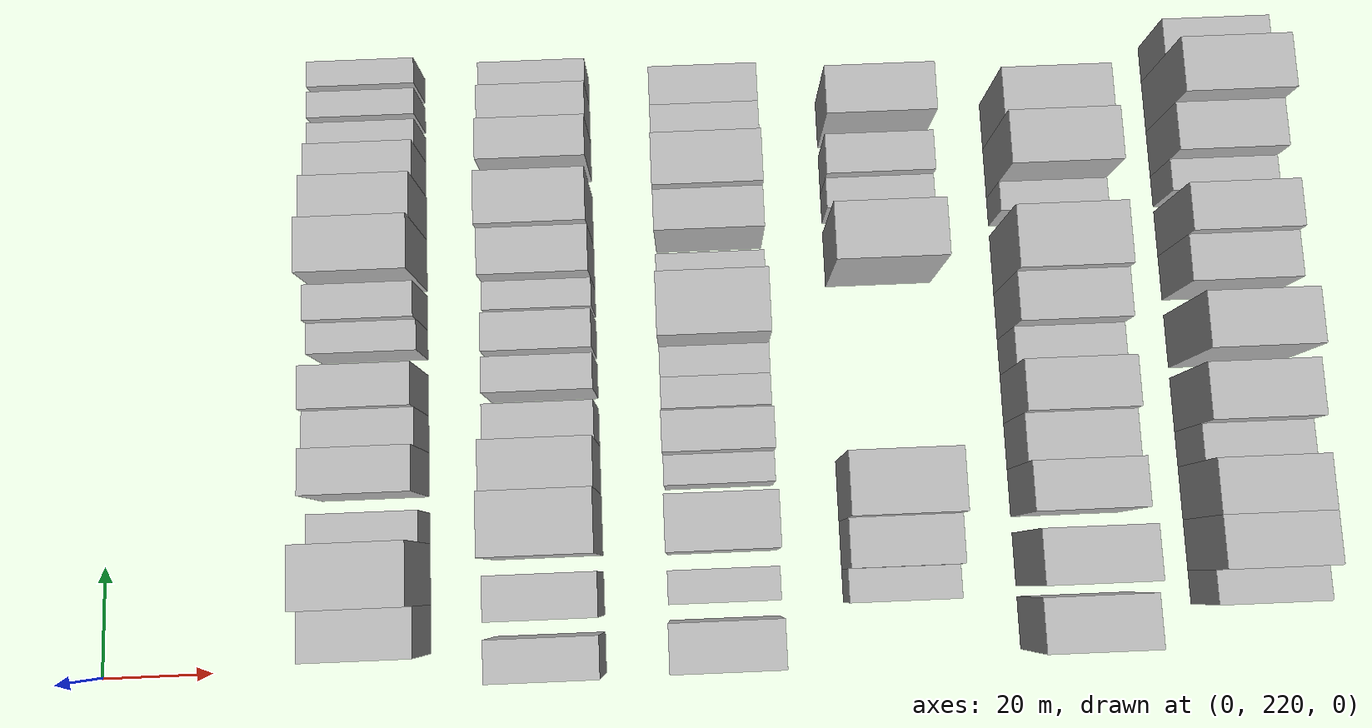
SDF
<sdf version="1.6">
 <world name="default">
  <model name="building_78">
   <static>1</static>
   <pose>50.0000 226.3653 0 0.000000 0.000000 0.000000</pose>
   <link name="link">
    <pose>0 0 9.00 0 0 0</pose>
    <collision name="collision"><geometry><box><size>20.0000 8.8633 18.0000</size></box></geometry></collision>
    <visual name="visual">
     <cast_shadows>0</cast_shadows>
     <geometry><box><size>20.0000 8.8633 18.0000</size></box></geometry>
     <material>
      <script>
       <uri>model://HANNAS_wall/materials/scripts</uri>
       <uri>model://HANNAS_wall/materials/textures</uri>
       <name>vrc/HANNAS_wall</name>
      </script>
     </material>
    </visual>
   </link>
  </model>
  <model name="building_79">
   <static>1</static>
   <pose>50.0000 236.3810 0 0.000000 0.000000 0.000000</pose>
   <link name="link">
    <pose>0 0 12.00 0 0 0</pose>
    <collision name="collision"><geometry><box><size>20.0000 11.1682 24.0000</size></box></geometry></collision>
    <visual name="visual">
     <cast_shadows>0</cast_shadows>
     <geometry><box><size>20.0000 11.1682 24.0000</size></box></geometry>
     <material>
      <script>
       <uri>model://HANNAS_wall/materials/scripts</uri>
       <uri>model://HANNAS_wall/materials/textures</uri>
       <name>vrc/HANNAS_wall</name>
      </script>
     </material>
    </visual>
   </link>
  </model>
  <model name="building_80">
   <static>1</static>
   <pose>50.0000 244.7860 0 0.000000 0.000000 0.000000</pose>
   <link name="link">
    <pose>0 0 6.00 0 0 0</pose>
    <collision name="collision"><geometry><box><size>20.0000 5.6417 12.0000</size></box></geometry></collision>
    <visual name="visual">
     <cast_shadows>0</cast_shadows>
     <geometry><box><size>20.0000 5.6417 12.0000</size></box></geometry>
     <material>
      <script>
       <uri>model://HANNAS_wall/materials/scripts</uri>
       <uri>model://HANNAS_wall/materials/textures</uri>
       <name>vrc/HANNAS_wall</name>
      </script>
     </material>
    </visual>
   </link>
  </model>
  <model name="building_81">
   <static>1</static>
   <pose>50.0000 254.7233 0 0.000000 0.000000 0.000000</pose>
   <link name="link">
    <pose>0 0 9.00 0 0 0</pose>
    <collision name="collision"><geometry><box><size>20.0000 8.2331 18.0000</size></box></geometry></collision>
    <visual name="visual">
     <cast_shadows>0</cast_shadows>
     <geometry><box><size>20.0000 8.2331 18.0000</size></box></geometry>
     <material>
      <script>
       <uri>model://HANNAS_wall/materials/scripts</uri>
       <uri>model://HANNAS_wall/materials/textures</uri>
       <name>vrc/HANNAS_wall</name>
      </script>
     </material>
    </visual>
   </link>
  </model>
  <model name="building_82">
   <static>1</static>
   <pose>50.0000 262.3057 0 0.000000 0.000000 0.000000</pose>
   <link name="link">
    <pose>0 0 7.50 0 0 0</pose>
    <collision name="collision"><geometry><box><size>20.0000 6.9316 15.0000</size></box></geometry></collision>
    <visual name="visual">
     <cast_shadows>0</cast_shadows>
     <geometry><box><size>20.0000 6.9316 15.0000</size></box></geometry>
     <material>
      <script>
       <uri>model://HANNAS_wall/materials/scripts</uri>
       <uri>model://HANNAS_wall/materials/textures</uri>
       <name>vrc/HANNAS_wall</name>
      </script>
     </material>
    </visual>
   </link>
  </model>
  <model name="building_83">
   <static>1</static>
   <pose>50.0000 269.6530 0 0.000000 0.000000 0.000000</pose>
   <link name="link">
    <pose>0 0 9.00 0 0 0</pose>
    <collision name="collision"><geometry><box><size>20.0000 7.7631 18.0000</size></box></geometry></collision>
    <visual name="visual">
     <cast_shadows>0</cast_shadows>
     <geometry><box><size>20.0000 7.7631 18.0000</size></box></geometry>
     <material>
      <script>
       <uri>model://HANNAS_wall/materials/scripts</uri>
       <uri>model://HANNAS_wall/materials/textures</uri>
       <name>vrc/HANNAS_wall</name>
      </script>
     </material>
    </visual>
   </link>
  </model>
  <model name="building_84">
   <static>1</static>
   <pose>50.0000 279.3646 0 0.000000 0.000000 0.000000</pose>
   <link name="link">
    <pose>0 0 6.00 0 0 0</pose>
    <collision name="collision"><geometry><box><size>20.0000 5.6602 12.0000</size></box></geometry></collision>
    <visual name="visual">
     <cast_shadows>0</cast_shadows>
     <geometry><box><size>20.0000 5.6602 12.0000</size></box></geometry>
     <material>
      <script>
       <uri>model://HANNAS_wall/materials/scripts</uri>
       <uri>model://HANNAS_wall/materials/textures</uri>
       <name>vrc/HANNAS_wall</name>
      </script>
     </material>
    </visual>
   </link>
  </model>
  <model name="building_85">
   <static>1</static>
   <pose>50.0000 285.4695 0 0.000000 0.000000 0.000000</pose>
   <link name="link">
    <pose>0 0 7.50 0 0 0</pose>
    <collision name="collision"><geometry><box><size>20.0000 6.5495 15.0000</size></box></geometry></collision>
    <visual name="visual">
     <cast_shadows>0</cast_shadows>
     <geometry><box><size>20.0000 6.5495 15.0000</size></box></geometry>
     <material>
      <script>
       <uri>model://HANNAS_wall/materials/scripts</uri>
       <uri>model://HANNAS_wall/materials/textures</uri>
       <name>vrc/HANNAS_wall</name>
      </script>
     </material>
    </visual>
   </link>
  </model>
  <model name="building_86">
   <static>1</static>
   <pose>50.0000 294.7625 0 0.000000 0.000000 0.000000</pose>
   <link name="link">
    <pose>0 0 10.50 0 0 0</pose>
    <collision name="collision"><geometry><box><size>20.0000 10.0365 21.0000</size></box></geometry></collision>
    <visual name="visual">
     <cast_shadows>0</cast_shadows>
     <geometry><box><size>20.0000 10.0365 21.0000</size></box></geometry>
     <material>
      <script>
       <uri>model://HANNAS_wall/materials/scripts</uri>
       <uri>model://HANNAS_wall/materials/textures</uri>
       <name>vrc/HANNAS_wall</name>
      </script>
     </material>
    </visual>
   </link>
  </model>
  <model name="building_87">
   <static>1</static>
   <pose>50.0000 304.0369 0 0.000000 0.000000 0.000000</pose>
   <link name="link">
    <pose>0 0 9.00 0 0 0</pose>
    <collision name="collision"><geometry><box><size>20.0000 8.5123 18.0000</size></box></geometry></collision>
    <visual name="visual">
     <cast_shadows>0</cast_shadows>
     <geometry><box><size>20.0000 8.5123 18.0000</size></box></geometry>
     <material>
      <script>
       <uri>model://HANNAS_wall/materials/scripts</uri>
       <uri>model://HANNAS_wall/materials/textures</uri>
       <name>vrc/HANNAS_wall</name>
      </script>
     </material>
    </visual>
   </link>
  </model>
  <model name="building_88">
   <static>1</static>
   <pose>50.0000 311.7357 0 0.000000 0.000000 0.000000</pose>
   <link name="link">
    <pose>0 0 7.50 0 0 0</pose>
    <collision name="collision"><geometry><box><size>20.0000 6.8854 15.0000</size></box></geometry></collision>
    <visual name="visual">
     <cast_shadows>0</cast_shadows>
     <geometry><box><size>20.0000 6.8854 15.0000</size></box></geometry>
     <material>
      <script>
       <uri>model://HANNAS_wall/materials/scripts</uri>
       <uri>model://HANNAS_wall/materials/textures</uri>
       <name>vrc/HANNAS_wall</name>
      </script>
     </material>
    </visual>
   </link>
  </model>
  <model name="building_89">
   <static>1</static>
   <pose>50.0000 317.6586 0 0.000000 0.000000 0.000000</pose>
   <link name="link">
    <pose>0 0 6.00 0 0 0</pose>
    <collision name="collision"><geometry><box><size>20.0000 4.9605 12.0000</size></box></geometry></collision>
    <visual name="visual">
     <cast_shadows>0</cast_shadows>
     <geometry><box><size>20.0000 4.9605 12.0000</size></box></geometry>
     <material>
      <script>
       <uri>model://HANNAS_wall/materials/scripts</uri>
       <uri>model://HANNAS_wall/materials/textures</uri>
       <name>vrc/HANNAS_wall</name>
      </script>
     </material>
    </visual>
   </link>
  </model>
  <model name="building_90">
   <static>1</static>
   <pose>50.0000 323.6501 0 0.000000 0.000000 0.000000</pose>
   <link name="link">
    <pose>0 0 6.00 0 0 0</pose>
    <collision name="collision"><geometry><box><size>20.0000 5.0225 12.0000</size></box></geometry></collision>
    <visual name="visual">
     <cast_shadows>0</cast_shadows>
     <geometry><box><size>20.0000 5.0225 12.0000</size></box></geometry>
     <material>
      <script>
       <uri>model://HANNAS_wall/materials/scripts</uri>
       <uri>model://HANNAS_wall/materials/textures</uri>
       <name>vrc/HANNAS_wall</name>
      </script>
     </material>
    </visual>
   </link>
  </model>
  <model name="building_91">
   <static>1</static>
   <pose>50.0000 329.6198 0 0.000000 0.000000 0.000000</pose>
   <link name="link">
    <pose>0 0 6.00 0 0 0</pose>
    <collision name="collision"><geometry><box><size>20.0000 4.9169 12.0000</size></box></geometry></collision>
    <visual name="visual">
     <cast_shadows>0</cast_shadows>
     <geometry><box><size>20.0000 4.9169 12.0000</size></box></geometry>
     <material>
      <script>
       <uri>model://HANNAS_wall/materials/scripts</uri>
       <uri>model://HANNAS_wall/materials/textures</uri>
       <name>vrc/HANNAS_wall</name>
      </script>
     </material>
    </visual>
   </link>
  </model>
  <model name="building_198">
   <static>1</static>
   <pose>82.0000 220.8516 0 0.000000 0.000000 0.000000</pose>
   <link name="link">
    <pose>0 0 9.00 0 0 0</pose>
    <collision name="collision"><geometry><box><size>20.0000 7.4585 18.0000</size></box></geometry></collision>
    <visual name="visual">
     <cast_shadows>0</cast_shadows>
     <geometry><box><size>20.0000 7.4585 18.0000</size></box></geometry>
     <material>
      <script>
       <uri>model://HANNAS_wall/materials/scripts</uri>
       <uri>model://HANNAS_wall/materials/textures</uri>
       <name>vrc/HANNAS_wall</name>
      </script>
     </material>
    </visual>
   </link>
  </model>
  <model name="building_199">
   <static>1</static>
   <pose>82.0000 231.5160 0 0.000000 0.000000 0.000000</pose>
   <link name="link">
    <pose>0 0 9.00 0 0 0</pose>
    <collision name="collision"><geometry><box><size>20.0000 7.8703 18.0000</size></box></geometry></collision>
    <visual name="visual">
     <cast_shadows>0</cast_shadows>
     <geometry><box><size>20.0000 7.8703 18.0000</size></box></geometry>
     <material>
      <script>
       <uri>model://HANNAS_wall/materials/scripts</uri>
       <uri>model://HANNAS_wall/materials/textures</uri>
       <name>vrc/HANNAS_wall</name>
      </script>
     </material>
    </visual>
   </link>
  </model>
  <model name="building_200">
   <static>1</static>
   <pose>82.0000 244.0868 0 0.000000 0.000000 0.000000</pose>
   <link name="link">
    <pose>0 0 12.00 0 0 0</pose>
    <collision name="collision"><geometry><box><size>20.0000 11.2714 24.0000</size></box></geometry></collision>
    <visual name="visual">
     <cast_shadows>0</cast_shadows>
     <geometry><box><size>20.0000 11.2714 24.0000</size></box></geometry>
     <material>
      <script>
       <uri>model://HANNAS_wall/materials/scripts</uri>
       <uri>model://HANNAS_wall/materials/textures</uri>
       <name>vrc/HANNAS_wall</name>
      </script>
     </material>
    </visual>
   </link>
  </model>
  <model name="building_201">
   <static>1</static>
   <pose>82.0000 254.2552 0 0.000000 0.000000 0.000000</pose>
   <link name="link">
    <pose>0 0 10.50 0 0 0</pose>
    <collision name="collision"><geometry><box><size>20.0000 9.0653 21.0000</size></box></geometry></collision>
    <visual name="visual">
     <cast_shadows>0</cast_shadows>
     <geometry><box><size>20.0000 9.0653 21.0000</size></box></geometry>
     <material>
      <script>
       <uri>model://HANNAS_wall/materials/scripts</uri>
       <uri>model://HANNAS_wall/materials/textures</uri>
       <name>vrc/HANNAS_wall</name>
      </script>
     </material>
    </visual>
   </link>
  </model>
  <model name="building_202">
   <static>1</static>
   <pose>82.0000 262.2653 0 0.000000 0.000000 0.000000</pose>
   <link name="link">
    <pose>0 0 7.50 0 0 0</pose>
    <collision name="collision"><geometry><box><size>20.0000 6.9549 15.0000</size></box></geometry></collision>
    <visual name="visual">
     <cast_shadows>0</cast_shadows>
     <geometry><box><size>20.0000 6.9549 15.0000</size></box></geometry>
     <material>
      <script>
       <uri>model://HANNAS_wall/materials/scripts</uri>
       <uri>model://HANNAS_wall/materials/textures</uri>
       <name>vrc/HANNAS_wall</name>
      </script>
     </material>
    </visual>
   </link>
  </model>
  <model name="building_203">
   <static>1</static>
   <pose>82.0000 271.0009 0 0.000000 0.000000 0.000000</pose>
   <link name="link">
    <pose>0 0 7.50 0 0 0</pose>
    <collision name="collision"><geometry><box><size>20.0000 6.5163 15.0000</size></box></geometry></collision>
    <visual name="visual">
     <cast_shadows>0</cast_shadows>
     <geometry><box><size>20.0000 6.5163 15.0000</size></box></geometry>
     <material>
      <script>
       <uri>model://HANNAS_wall/materials/scripts</uri>
       <uri>model://HANNAS_wall/materials/textures</uri>
       <name>vrc/HANNAS_wall</name>
      </script>
     </material>
    </visual>
   </link>
  </model>
  <model name="building_204">
   <static>1</static>
   <pose>82.0000 278.8013 0 0.000000 0.000000 0.000000</pose>
   <link name="link">
    <pose>0 0 7.50 0 0 0</pose>
    <collision name="collision"><geometry><box><size>20.0000 7.0845 15.0000</size></box></geometry></collision>
    <visual name="visual">
     <cast_shadows>0</cast_shadows>
     <geometry><box><size>20.0000 7.0845 15.0000</size></box></geometry>
     <material>
      <script>
       <uri>model://HANNAS_wall/materials/scripts</uri>
       <uri>model://HANNAS_wall/materials/textures</uri>
       <name>vrc/HANNAS_wall</name>
      </script>
     </material>
    </visual>
   </link>
  </model>
  <model name="building_205">
   <static>1</static>
   <pose>82.0000 285.9960 0 0.000000 0.000000 0.000000</pose>
   <link name="link">
    <pose>0 0 6.00 0 0 0</pose>
    <collision name="collision"><geometry><box><size>20.0000 5.3049 12.0000</size></box></geometry></collision>
    <visual name="visual">
     <cast_shadows>0</cast_shadows>
     <geometry><box><size>20.0000 5.3049 12.0000</size></box></geometry>
     <material>
      <script>
       <uri>model://HANNAS_wall/materials/scripts</uri>
       <uri>model://HANNAS_wall/materials/textures</uri>
       <name>vrc/HANNAS_wall</name>
      </script>
     </material>
    </visual>
   </link>
  </model>
  <model name="building_206">
   <static>1</static>
   <pose>82.0000 292.9372 0 0.000000 0.000000 0.000000</pose>
   <link name="link">
    <pose>0 0 9.00 0 0 0</pose>
    <collision name="collision"><geometry><box><size>20.0000 8.5776 18.0000</size></box></geometry></collision>
    <visual name="visual">
     <cast_shadows>0</cast_shadows>
     <geometry><box><size>20.0000 8.5776 18.0000</size></box></geometry>
     <material>
      <script>
       <uri>model://HANNAS_wall/materials/scripts</uri>
       <uri>model://HANNAS_wall/materials/textures</uri>
       <name>vrc/HANNAS_wall</name>
      </script>
     </material>
    </visual>
   </link>
  </model>
  <model name="building_207">
   <static>1</static>
   <pose>82.0000 302.1312 0 0.000000 0.000000 0.000000</pose>
   <link name="link">
    <pose>0 0 10.50 0 0 0</pose>
    <collision name="collision"><geometry><box><size>20.0000 9.8104 21.0000</size></box></geometry></collision>
    <visual name="visual">
     <cast_shadows>0</cast_shadows>
     <geometry><box><size>20.0000 9.8104 21.0000</size></box></geometry>
     <material>
      <script>
       <uri>model://HANNAS_wall/materials/scripts</uri>
       <uri>model://HANNAS_wall/materials/textures</uri>
       <name>vrc/HANNAS_wall</name>
      </script>
     </material>
    </visual>
   </link>
  </model>
  <model name="building_208">
   <static>1</static>
   <pose>82.0000 313.8914 0 0.000000 0.000000 0.000000</pose>
   <link name="link">
    <pose>0 0 9.00 0 0 0</pose>
    <collision name="collision"><geometry><box><size>20.0000 7.7100 18.0000</size></box></geometry></collision>
    <visual name="visual">
     <cast_shadows>0</cast_shadows>
     <geometry><box><size>20.0000 7.7100 18.0000</size></box></geometry>
     <material>
      <script>
       <uri>model://HANNAS_wall/materials/scripts</uri>
       <uri>model://HANNAS_wall/materials/textures</uri>
       <name>vrc/HANNAS_wall</name>
      </script>
     </material>
    </visual>
   </link>
  </model>
  <model name="building_209">
   <static>1</static>
   <pose>82.0000 321.4472 0 0.000000 0.000000 0.000000</pose>
   <link name="link">
    <pose>0 0 7.50 0 0 0</pose>
    <collision name="collision"><geometry><box><size>20.0000 7.4018 15.0000</size></box></geometry></collision>
    <visual name="visual">
     <cast_shadows>0</cast_shadows>
     <geometry><box><size>20.0000 7.4018 15.0000</size></box></geometry>
     <material>
      <script>
       <uri>model://HANNAS_wall/materials/scripts</uri>
       <uri>model://HANNAS_wall/materials/textures</uri>
       <name>vrc/HANNAS_wall</name>
      </script>
     </material>
    </visual>
   </link>
  </model>
  <model name="building_210">
   <static>1</static>
   <pose>82.0000 327.8864 0 0.000000 0.000000 0.000000</pose>
   <link name="link">
    <pose>0 0 6.00 0 0 0</pose>
    <collision name="collision"><geometry><box><size>20.0000 5.4766 12.0000</size></box></geometry></collision>
    <visual name="visual">
     <cast_shadows>0</cast_shadows>
     <geometry><box><size>20.0000 5.4766 12.0000</size></box></geometry>
     <material>
      <script>
       <uri>model://HANNAS_wall/materials/scripts</uri>
       <uri>model://HANNAS_wall/materials/textures</uri>
       <name>vrc/HANNAS_wall</name>
      </script>
     </material>
    </visual>
   </link>
  </model>
  <model name="building_319">
   <static>1</static>
   <pose>114.0000 221.8684 0 0.000000 0.000000 0.000000</pose>
   <link name="link">
    <pose>0 0 10.50 0 0 0</pose>
    <collision name="collision"><geometry><box><size>20.0000 8.5808 21.0000</size></box></geometry></collision>
    <visual name="visual">
     <cast_shadows>0</cast_shadows>
     <geometry><box><size>20.0000 8.5808 21.0000</size></box></geometry>
     <material>
      <script>
       <uri>model://HANNAS_wall/materials/scripts</uri>
       <uri>model://HANNAS_wall/materials/textures</uri>
       <name>vrc/HANNAS_wall</name>
      </script>
     </material>
    </visual>
   </link>
  </model>
  <model name="building_320">
   <static>1</static>
   <pose>114.0000 232.1195 0 0.000000 0.000000 0.000000</pose>
   <link name="link">
    <pose>0 0 6.00 0 0 0</pose>
    <collision name="collision"><geometry><box><size>20.0000 5.9213 12.0000</size></box></geometry></collision>
    <visual name="visual">
     <cast_shadows>0</cast_shadows>
     <geometry><box><size>20.0000 5.9213 12.0000</size></box></geometry>
     <material>
      <script>
       <uri>model://HANNAS_wall/materials/scripts</uri>
       <uri>model://HANNAS_wall/materials/textures</uri>
       <name>vrc/HANNAS_wall</name>
      </script>
     </material>
    </visual>
   </link>
  </model>
  <model name="building_321">
   <static>1</static>
   <pose>114.0000 243.0829 0 0.000000 0.000000 0.000000</pose>
   <link name="link">
    <pose>0 0 10.50 0 0 0</pose>
    <collision name="collision"><geometry><box><size>20.0000 10.0055 21.0000</size></box></geometry></collision>
    <visual name="visual">
     <cast_shadows>0</cast_shadows>
     <geometry><box><size>20.0000 10.0055 21.0000</size></box></geometry>
     <material>
      <script>
       <uri>model://HANNAS_wall/materials/scripts</uri>
       <uri>model://HANNAS_wall/materials/textures</uri>
       <name>vrc/HANNAS_wall</name>
      </script>
     </material>
    </visual>
   </link>
  </model>
  <model name="building_322">
   <static>1</static>
   <pose>114.0000 252.8158 0 0.000000 0.000000 0.000000</pose>
   <link name="link">
    <pose>0 0 6.00 0 0 0</pose>
    <collision name="collision"><geometry><box><size>20.0000 5.4605 12.0000</size></box></geometry></collision>
    <visual name="visual">
     <cast_shadows>0</cast_shadows>
     <geometry><box><size>20.0000 5.4605 12.0000</size></box></geometry>
     <material>
      <script>
       <uri>model://HANNAS_wall/materials/scripts</uri>
       <uri>model://HANNAS_wall/materials/textures</uri>
       <name>vrc/HANNAS_wall</name>
      </script>
     </material>
    </visual>
   </link>
  </model>
  <model name="building_323">
   <static>1</static>
   <pose>114.0000 259.2366 0 0.000000 0.000000 0.000000</pose>
   <link name="link">
    <pose>0 0 9.00 0 0 0</pose>
    <collision name="collision"><geometry><box><size>20.0000 7.3811 18.0000</size></box></geometry></collision>
    <visual name="visual">
     <cast_shadows>0</cast_shadows>
     <geometry><box><size>20.0000 7.3811 18.0000</size></box></geometry>
     <material>
      <script>
       <uri>model://HANNAS_wall/materials/scripts</uri>
       <uri>model://HANNAS_wall/materials/textures</uri>
       <name>vrc/HANNAS_wall</name>
      </script>
     </material>
    </visual>
   </link>
  </model>
  <model name="building_324">
   <static>1</static>
   <pose>114.0000 266.7960 0 0.000000 0.000000 0.000000</pose>
   <link name="link">
    <pose>0 0 6.00 0 0 0</pose>
    <collision name="collision"><geometry><box><size>20.0000 5.7378 12.0000</size></box></geometry></collision>
    <visual name="visual">
     <cast_shadows>0</cast_shadows>
     <geometry><box><size>20.0000 5.7378 12.0000</size></box></geometry>
     <material>
      <script>
       <uri>model://HANNAS_wall/materials/scripts</uri>
       <uri>model://HANNAS_wall/materials/textures</uri>
       <name>vrc/HANNAS_wall</name>
      </script>
     </material>
    </visual>
   </link>
  </model>
  <model name="building_325">
   <static>1</static>
   <pose>114.0000 272.4523 0 0.000000 0.000000 0.000000</pose>
   <link name="link">
    <pose>0 0 6.00 0 0 0</pose>
    <collision name="collision"><geometry><box><size>20.0000 5.5748 12.0000</size></box></geometry></collision>
    <visual name="visual">
     <cast_shadows>0</cast_shadows>
     <geometry><box><size>20.0000 5.5748 12.0000</size></box></geometry>
     <material>
      <script>
       <uri>model://HANNAS_wall/materials/scripts</uri>
       <uri>model://HANNAS_wall/materials/textures</uri>
       <name>vrc/HANNAS_wall</name>
      </script>
     </material>
    </visual>
   </link>
  </model>
  <model name="building_326">
   <static>1</static>
   <pose>114.0000 280.9605 0 0.000000 0.000000 0.000000</pose>
   <link name="link">
    <pose>0 0 12.00 0 0 0</pose>
    <collision name="collision"><geometry><box><size>20.0000 11.4417 24.0000</size></box></geometry></collision>
    <visual name="visual">
     <cast_shadows>0</cast_shadows>
     <geometry><box><size>20.0000 11.4417 24.0000</size></box></geometry>
     <material>
      <script>
       <uri>model://HANNAS_wall/materials/scripts</uri>
       <uri>model://HANNAS_wall/materials/textures</uri>
       <name>vrc/HANNAS_wall</name>
      </script>
     </material>
    </visual>
   </link>
  </model>
  <model name="building_327">
   <static>1</static>
   <pose>114.0000 289.5778 0 0.000000 0.000000 0.000000</pose>
   <link name="link">
    <pose>0 0 6.00 0 0 0</pose>
    <collision name="collision"><geometry><box><size>20.0000 5.7929 12.0000</size></box></geometry></collision>
    <visual name="visual">
     <cast_shadows>0</cast_shadows>
     <geometry><box><size>20.0000 5.7929 12.0000</size></box></geometry>
     <material>
      <script>
       <uri>model://HANNAS_wall/materials/scripts</uri>
       <uri>model://HANNAS_wall/materials/textures</uri>
       <name>vrc/HANNAS_wall</name>
      </script>
     </material>
    </visual>
   </link>
  </model>
  <model name="building_328">
   <static>1</static>
   <pose>114.0000 299.2676 0 0.000000 0.000000 0.000000</pose>
   <link name="link">
    <pose>0 0 9.00 0 0 0</pose>
    <collision name="collision"><geometry><box><size>20.0000 7.5868 18.0000</size></box></geometry></collision>
    <visual name="visual">
     <cast_shadows>0</cast_shadows>
     <geometry><box><size>20.0000 7.5868 18.0000</size></box></geometry>
     <material>
      <script>
       <uri>model://HANNAS_wall/materials/scripts</uri>
       <uri>model://HANNAS_wall/materials/textures</uri>
       <name>vrc/HANNAS_wall</name>
      </script>
     </material>
    </visual>
   </link>
  </model>
  <model name="building_329">
   <static>1</static>
   <pose>114.0000 307.9103 0 0.000000 0.000000 0.000000</pose>
   <link name="link">
    <pose>0 0 10.50 0 0 0</pose>
    <collision name="collision"><geometry><box><size>20.0000 9.6985 21.0000</size></box></geometry></collision>
    <visual name="visual">
     <cast_shadows>0</cast_shadows>
     <geometry><box><size>20.0000 9.6985 21.0000</size></box></geometry>
     <material>
      <script>
       <uri>model://HANNAS_wall/materials/scripts</uri>
       <uri>model://HANNAS_wall/materials/textures</uri>
       <name>vrc/HANNAS_wall</name>
      </script>
     </material>
    </visual>
   </link>
  </model>
  <model name="building_330">
   <static>1</static>
   <pose>114.0000 316.3688 0 0.000000 0.000000 0.000000</pose>
   <link name="link">
    <pose>0 0 7.50 0 0 0</pose>
    <collision name="collision"><geometry><box><size>20.0000 7.2186 15.0000</size></box></geometry></collision>
    <visual name="visual">
     <cast_shadows>0</cast_shadows>
     <geometry><box><size>20.0000 7.2186 15.0000</size></box></geometry>
     <material>
      <script>
       <uri>model://HANNAS_wall/materials/scripts</uri>
       <uri>model://HANNAS_wall/materials/textures</uri>
       <name>vrc/HANNAS_wall</name>
      </script>
     </material>
    </visual>
   </link>
  </model>
  <model name="building_331">
   <static>1</static>
   <pose>114.0000 323.6629 0 0.000000 0.000000 0.000000</pose>
   <link name="link">
    <pose>0 0 7.50 0 0 0</pose>
    <collision name="collision"><geometry><box><size>20.0000 7.3696 15.0000</size></box></geometry></collision>
    <visual name="visual">
     <cast_shadows>0</cast_shadows>
     <geometry><box><size>20.0000 7.3696 15.0000</size></box></geometry>
     <material>
      <script>
       <uri>model://HANNAS_wall/materials/scripts</uri>
       <uri>model://HANNAS_wall/materials/textures</uri>
       <name>vrc/HANNAS_wall</name>
      </script>
     </material>
    </visual>
   </link>
  </model>
  <model name="building_430">
   <static>1</static>
   <pose>146.0000 231.0947 0 0.000000 0.000000 0.000000</pose>
   <link name="link">
    <pose>0 0 6.00 0 0 0</pose>
    <collision name="collision"><geometry><box><size>20.0000 5.9779 12.0000</size></box></geometry></collision>
    <visual name="visual">
     <cast_shadows>0</cast_shadows>
     <geometry><box><size>20.0000 5.9779 12.0000</size></box></geometry>
     <material>
      <script>
       <uri>model://HANNAS_wall/materials/scripts</uri>
       <uri>model://HANNAS_wall/materials/textures</uri>
       <name>vrc/HANNAS_wall</name>
      </script>
     </material>
    </visual>
   </link>
  </model>
  <model name="building_431">
   <static>1</static>
   <pose>146.0000 238.4606 0 0.000000 0.000000 0.000000</pose>
   <link name="link">
    <pose>0 0 9.00 0 0 0</pose>
    <collision name="collision"><geometry><box><size>20.0000 8.7540 18.0000</size></box></geometry></collision>
    <visual name="visual">
     <cast_shadows>0</cast_shadows>
     <geometry><box><size>20.0000 8.7540 18.0000</size></box></geometry>
     <material>
      <script>
       <uri>model://HANNAS_wall/materials/scripts</uri>
       <uri>model://HANNAS_wall/materials/textures</uri>
       <name>vrc/HANNAS_wall</name>
      </script>
     </material>
    </visual>
   </link>
  </model>
  <model name="building_432">
   <static>1</static>
   <pose>146.0000 248.4396 0 0.000000 0.000000 0.000000</pose>
   <link name="link">
    <pose>0 0 12.00 0 0 0</pose>
    <collision name="collision"><geometry><box><size>20.0000 11.2040 24.0000</size></box></geometry></collision>
    <visual name="visual">
     <cast_shadows>0</cast_shadows>
     <geometry><box><size>20.0000 11.2040 24.0000</size></box></geometry>
     <material>
      <script>
       <uri>model://HANNAS_wall/materials/scripts</uri>
       <uri>model://HANNAS_wall/materials/textures</uri>
       <name>vrc/HANNAS_wall</name>
      </script>
     </material>
    </visual>
   </link>
  </model>
  <model name="building_433">
   <static>1</static>
   <pose>146.0000 292.6852 0 0.000000 0.000000 0.000000</pose>
   <link name="link">
    <pose>0 0 12.00 0 0 0</pose>
    <collision name="collision"><geometry><box><size>20.0000 10.4290 24.0000</size></box></geometry></collision>
    <visual name="visual">
     <cast_shadows>0</cast_shadows>
     <geometry><box><size>20.0000 10.4290 24.0000</size></box></geometry>
     <material>
      <script>
       <uri>model://HANNAS_wall/materials/scripts</uri>
       <uri>model://HANNAS_wall/materials/textures</uri>
       <name>vrc/HANNAS_wall</name>
      </script>
     </material>
    </visual>
   </link>
  </model>
  <model name="building_434">
   <static>1</static>
   <pose>146.0000 302.7395 0 0.000000 0.000000 0.000000</pose>
   <link name="link">
    <pose>0 0 6.00 0 0 0</pose>
    <collision name="collision"><geometry><box><size>20.0000 5.6796 12.0000</size></box></geometry></collision>
    <visual name="visual">
     <cast_shadows>0</cast_shadows>
     <geometry><box><size>20.0000 5.6796 12.0000</size></box></geometry>
     <material>
      <script>
       <uri>model://HANNAS_wall/materials/scripts</uri>
       <uri>model://HANNAS_wall/materials/textures</uri>
       <name>vrc/HANNAS_wall</name>
      </script>
     </material>
    </visual>
   </link>
  </model>
  <model name="building_435">
   <static>1</static>
   <pose>146.0000 309.3132 0 0.000000 0.000000 0.000000</pose>
   <link name="link">
    <pose>0 0 7.50 0 0 0</pose>
    <collision name="collision"><geometry><box><size>20.0000 7.4678 15.0000</size></box></geometry></collision>
    <visual name="visual">
     <cast_shadows>0</cast_shadows>
     <geometry><box><size>20.0000 7.4678 15.0000</size></box></geometry>
     <material>
      <script>
       <uri>model://HANNAS_wall/materials/scripts</uri>
       <uri>model://HANNAS_wall/materials/textures</uri>
       <name>vrc/HANNAS_wall</name>
      </script>
     </material>
    </visual>
   </link>
  </model>
  <model name="building_436">
   <static>1</static>
   <pose>146.0000 319.5268 0 0.000000 0.000000 0.000000</pose>
   <link name="link">
    <pose>0 0 10.50 0 0 0</pose>
    <collision name="collision"><geometry><box><size>20.0000 8.9594 21.0000</size></box></geometry></collision>
    <visual name="visual">
     <cast_shadows>0</cast_shadows>
     <geometry><box><size>20.0000 8.9594 21.0000</size></box></geometry>
     <material>
      <script>
       <uri>model://HANNAS_wall/materials/scripts</uri>
       <uri>model://HANNAS_wall/materials/textures</uri>
       <name>vrc/HANNAS_wall</name>
      </script>
     </material>
    </visual>
   </link>
  </model>
  <model name="building_550">
   <static>1</static>
   <pose>178.0000 223.0452 0 0.000000 0.000000 0.000000</pose>
   <link name="link">
    <pose>0 0 10.50 0 0 0</pose>
    <collision name="collision"><geometry><box><size>20.0000 9.5068 21.0000</size></box></geometry></collision>
    <visual name="visual">
     <cast_shadows>0</cast_shadows>
     <geometry><box><size>20.0000 9.5068 21.0000</size></box></geometry>
     <material>
      <script>
       <uri>model://HANNAS_wall/materials/scripts</uri>
       <uri>model://HANNAS_wall/materials/textures</uri>
       <name>vrc/HANNAS_wall</name>
      </script>
     </material>
    </visual>
   </link>
  </model>
  <model name="building_551">
   <static>1</static>
   <pose>178.0000 234.6134 0 0.000000 0.000000 0.000000</pose>
   <link name="link">
    <pose>0 0 12.00 0 0 0</pose>
    <collision name="collision"><geometry><box><size>20.0000 9.6297 24.0000</size></box></geometry></collision>
    <visual name="visual">
     <cast_shadows>0</cast_shadows>
     <geometry><box><size>20.0000 9.6297 24.0000</size></box></geometry>
     <material>
      <script>
       <uri>model://HANNAS_wall/materials/scripts</uri>
       <uri>model://HANNAS_wall/materials/textures</uri>
       <name>vrc/HANNAS_wall</name>
      </script>
     </material>
    </visual>
   </link>
  </model>
  <model name="building_552">
   <static>1</static>
   <pose>178.0000 246.8170 0 0.000000 0.000000 0.000000</pose>
   <link name="link">
    <pose>0 0 10.50 0 0 0</pose>
    <collision name="collision"><geometry><box><size>20.0000 8.7774 21.0000</size></box></geometry></collision>
    <visual name="visual">
     <cast_shadows>0</cast_shadows>
     <geometry><box><size>20.0000 8.7774 21.0000</size></box></geometry>
     <material>
      <script>
       <uri>model://HANNAS_wall/materials/scripts</uri>
       <uri>model://HANNAS_wall/materials/textures</uri>
       <name>vrc/HANNAS_wall</name>
      </script>
     </material>
    </visual>
   </link>
  </model>
  <model name="building_553">
   <static>1</static>
   <pose>178.0000 255.5236 0 0.000000 0.000000 0.000000</pose>
   <link name="link">
    <pose>0 0 9.00 0 0 0</pose>
    <collision name="collision"><geometry><box><size>20.0000 8.6360 18.0000</size></box></geometry></collision>
    <visual name="visual">
     <cast_shadows>0</cast_shadows>
     <geometry><box><size>20.0000 8.6360 18.0000</size></box></geometry>
     <material>
      <script>
       <uri>model://HANNAS_wall/materials/scripts</uri>
       <uri>model://HANNAS_wall/materials/textures</uri>
       <name>vrc/HANNAS_wall</name>
      </script>
     </material>
    </visual>
   </link>
  </model>
  <model name="building_554">
   <static>1</static>
   <pose>178.0000 264.4175 0 0.000000 0.000000 0.000000</pose>
   <link name="link">
    <pose>0 0 10.50 0 0 0</pose>
    <collision name="collision"><geometry><box><size>20.0000 9.1517 21.0000</size></box></geometry></collision>
    <visual name="visual">
     <cast_shadows>0</cast_shadows>
     <geometry><box><size>20.0000 9.1517 21.0000</size></box></geometry>
     <material>
      <script>
       <uri>model://HANNAS_wall/materials/scripts</uri>
       <uri>model://HANNAS_wall/materials/textures</uri>
       <name>vrc/HANNAS_wall</name>
      </script>
     </material>
    </visual>
   </link>
  </model>
  <model name="building_555">
   <static>1</static>
   <pose>178.0000 272.3838 0 0.000000 0.000000 0.000000</pose>
   <link name="link">
    <pose>0 0 7.50 0 0 0</pose>
    <collision name="collision"><geometry><box><size>20.0000 6.7809 15.0000</size></box></geometry></collision>
    <visual name="visual">
     <cast_shadows>0</cast_shadows>
     <geometry><box><size>20.0000 6.7809 15.0000</size></box></geometry>
     <material>
      <script>
       <uri>model://HANNAS_wall/materials/scripts</uri>
       <uri>model://HANNAS_wall/materials/textures</uri>
       <name>vrc/HANNAS_wall</name>
      </script>
     </material>
    </visual>
   </link>
  </model>
  <model name="building_556">
   <static>1</static>
   <pose>178.0000 280.2178 0 0.000000 0.000000 0.000000</pose>
   <link name="link">
    <pose>0 0 10.50 0 0 0</pose>
    <collision name="collision"><geometry><box><size>20.0000 8.8872 21.0000</size></box></geometry></collision>
    <visual name="visual">
     <cast_shadows>0</cast_shadows>
     <geometry><box><size>20.0000 8.8872 21.0000</size></box></geometry>
     <material>
      <script>
       <uri>model://HANNAS_wall/materials/scripts</uri>
       <uri>model://HANNAS_wall/materials/textures</uri>
       <name>vrc/HANNAS_wall</name>
      </script>
     </material>
    </visual>
   </link>
  </model>
  <model name="building_557">
   <static>1</static>
   <pose>178.0000 290.3509 0 0.000000 0.000000 0.000000</pose>
   <link name="link">
    <pose>0 0 12.00 0 0 0</pose>
    <collision name="collision"><geometry><box><size>20.0000 11.3790 24.0000</size></box></geometry></collision>
    <visual name="visual">
     <cast_shadows>0</cast_shadows>
     <geometry><box><size>20.0000 11.3790 24.0000</size></box></geometry>
     <material>
      <script>
       <uri>model://HANNAS_wall/materials/scripts</uri>
       <uri>model://HANNAS_wall/materials/textures</uri>
       <name>vrc/HANNAS_wall</name>
      </script>
     </material>
    </visual>
   </link>
  </model>
  <model name="building_558">
   <static>1</static>
   <pose>178.0000 300.7852 0 0.000000 0.000000 0.000000</pose>
   <link name="link">
    <pose>0 0 6.00 0 0 0</pose>
    <collision name="collision"><geometry><box><size>20.0000 5.4897 12.0000</size></box></geometry></collision>
    <visual name="visual">
     <cast_shadows>0</cast_shadows>
     <geometry><box><size>20.0000 5.4897 12.0000</size></box></geometry>
     <material>
      <script>
       <uri>model://HANNAS_wall/materials/scripts</uri>
       <uri>model://HANNAS_wall/materials/textures</uri>
       <name>vrc/HANNAS_wall</name>
      </script>
     </material>
    </visual>
   </link>
  </model>
  <model name="building_559">
   <static>1</static>
   <pose>178.0000 308.4365 0 0.000000 0.000000 0.000000</pose>
   <link name="link">
    <pose>0 0 12.00 0 0 0</pose>
    <collision name="collision"><geometry><box><size>20.0000 9.8129 24.0000</size></box></geometry></collision>
    <visual name="visual">
     <cast_shadows>0</cast_shadows>
     <geometry><box><size>20.0000 9.8129 24.0000</size></box></geometry>
     <material>
      <script>
       <uri>model://HANNAS_wall/materials/scripts</uri>
       <uri>model://HANNAS_wall/materials/textures</uri>
       <name>vrc/HANNAS_wall</name>
      </script>
     </material>
    </visual>
   </link>
  </model>
  <model name="building_560">
   <static>1</static>
   <pose>178.0000 317.8624 0 0.000000 0.000000 0.000000</pose>
   <link name="link">
    <pose>0 0 10.50 0 0 0</pose>
    <collision name="collision"><geometry><box><size>20.0000 9.0389 21.0000</size></box></geometry></collision>
    <visual name="visual">
     <cast_shadows>0</cast_shadows>
     <geometry><box><size>20.0000 9.0389 21.0000</size></box></geometry>
     <material>
      <script>
       <uri>model://HANNAS_wall/materials/scripts</uri>
       <uri>model://HANNAS_wall/materials/textures</uri>
       <name>vrc/HANNAS_wall</name>
      </script>
     </material>
    </visual>
   </link>
  </model>
  <model name="building_664">
   <static>1</static>
   <pose>210.0000 228.1542 0 0.000000 0.000000 0.000000</pose>
   <link name="link">
    <pose>0 0 7.50 0 0 0</pose>
    <collision name="collision"><geometry><box><size>20.0000 6.1047 15.0000</size></box></geometry></collision>
    <visual name="visual">
     <cast_shadows>0</cast_shadows>
     <geometry><box><size>20.0000 6.1047 15.0000</size></box></geometry>
     <material>
      <script>
       <uri>model://HANNAS_wall/materials/scripts</uri>
       <uri>model://HANNAS_wall/materials/textures</uri>
       <name>vrc/HANNAS_wall</name>
      </script>
     </material>
    </visual>
   </link>
  </model>
  <model name="building_665">
   <static>1</static>
   <pose>210.0000 235.8763 0 0.000000 0.000000 0.000000</pose>
   <link name="link">
    <pose>0 0 10.50 0 0 0</pose>
    <collision name="collision"><geometry><box><size>20.0000 9.3396 21.0000</size></box></geometry></collision>
    <visual name="visual">
     <cast_shadows>0</cast_shadows>
     <geometry><box><size>20.0000 9.3396 21.0000</size></box></geometry>
     <material>
      <script>
       <uri>model://HANNAS_wall/materials/scripts</uri>
       <uri>model://HANNAS_wall/materials/textures</uri>
       <name>vrc/HANNAS_wall</name>
      </script>
     </material>
    </visual>
   </link>
  </model>
  <model name="building_666">
   <static>1</static>
   <pose>210.0000 245.4489 0 0.000000 0.000000 0.000000</pose>
   <link name="link">
    <pose>0 0 10.50 0 0 0</pose>
    <collision name="collision"><geometry><box><size>20.0000 9.8056 21.0000</size></box></geometry></collision>
    <visual name="visual">
     <cast_shadows>0</cast_shadows>
     <geometry><box><size>20.0000 9.8056 21.0000</size></box></geometry>
     <material>
      <script>
       <uri>model://HANNAS_wall/materials/scripts</uri>
       <uri>model://HANNAS_wall/materials/textures</uri>
       <name>vrc/HANNAS_wall</name>
      </script>
     </material>
    </visual>
   </link>
  </model>
  <model name="building_667">
   <static>1</static>
   <pose>210.0000 253.6530 0 0.000000 0.000000 0.000000</pose>
   <link name="link">
    <pose>0 0 7.50 0 0 0</pose>
    <collision name="collision"><geometry><box><size>20.0000 6.6025 15.0000</size></box></geometry></collision>
    <visual name="visual">
     <cast_shadows>0</cast_shadows>
     <geometry><box><size>20.0000 6.6025 15.0000</size></box></geometry>
     <material>
      <script>
       <uri>model://HANNAS_wall/materials/scripts</uri>
       <uri>model://HANNAS_wall/materials/textures</uri>
       <name>vrc/HANNAS_wall</name>
      </script>
     </material>
    </visual>
   </link>
  </model>
  <model name="building_668">
   <static>1</static>
   <pose>210.0000 262.0456 0 0.000000 0.000000 0.000000</pose>
   <link name="link">
    <pose>0 0 10.50 0 0 0</pose>
    <collision name="collision"><geometry><box><size>20.0000 10.1827 21.0000</size></box></geometry></collision>
    <visual name="visual">
     <cast_shadows>0</cast_shadows>
     <geometry><box><size>20.0000 10.1827 21.0000</size></box></geometry>
     <material>
      <script>
       <uri>model://HANNAS_wall/materials/scripts</uri>
       <uri>model://HANNAS_wall/materials/textures</uri>
       <name>vrc/HANNAS_wall</name>
      </script>
     </material>
    </visual>
   </link>
  </model>
  <model name="building_669">
   <static>1</static>
   <pose>210.0000 274.1761 0 0.000000 0.000000 0.000000</pose>
   <link name="link">
    <pose>0 0 12.00 0 0 0</pose>
    <collision name="collision"><geometry><box><size>20.0000 10.0784 24.0000</size></box></geometry></collision>
    <visual name="visual">
     <cast_shadows>0</cast_shadows>
     <geometry><box><size>20.0000 10.0784 24.0000</size></box></geometry>
     <material>
      <script>
       <uri>model://HANNAS_wall/materials/scripts</uri>
       <uri>model://HANNAS_wall/materials/textures</uri>
       <name>vrc/HANNAS_wall</name>
      </script>
     </material>
    </visual>
   </link>
  </model>
  <model name="building_670">
   <static>1</static>
   <pose>210.0000 286.4879 0 0.000000 0.000000 0.000000</pose>
   <link name="link">
    <pose>0 0 9.00 0 0 0</pose>
    <collision name="collision"><geometry><box><size>20.0000 8.5452 18.0000</size></box></geometry></collision>
    <visual name="visual">
     <cast_shadows>0</cast_shadows>
     <geometry><box><size>20.0000 8.5452 18.0000</size></box></geometry>
     <material>
      <script>
       <uri>model://HANNAS_wall/materials/scripts</uri>
       <uri>model://HANNAS_wall/materials/textures</uri>
       <name>vrc/HANNAS_wall</name>
      </script>
     </material>
    </visual>
   </link>
  </model>
  <model name="building_671">
   <static>1</static>
   <pose>210.0000 295.1339 0 0.000000 0.000000 0.000000</pose>
   <link name="link">
    <pose>0 0 10.50 0 0 0</pose>
    <collision name="collision"><geometry><box><size>20.0000 8.7468 21.0000</size></box></geometry></collision>
    <visual name="visual">
     <cast_shadows>0</cast_shadows>
     <geometry><box><size>20.0000 8.7468 21.0000</size></box></geometry>
     <material>
      <script>
       <uri>model://HANNAS_wall/materials/scripts</uri>
       <uri>model://HANNAS_wall/materials/textures</uri>
       <name>vrc/HANNAS_wall</name>
      </script>
     </material>
    </visual>
   </link>
  </model>
  <model name="building_672">
   <static>1</static>
   <pose>210.0000 303.5060 0 0.000000 0.000000 0.000000</pose>
   <link name="link">
    <pose>0 0 6.00 0 0 0</pose>
    <collision name="collision"><geometry><box><size>20.0000 5.9975 12.0000</size></box></geometry></collision>
    <visual name="visual">
     <cast_shadows>0</cast_shadows>
     <geometry><box><size>20.0000 5.9975 12.0000</size></box></geometry>
     <material>
      <script>
       <uri>model://HANNAS_wall/materials/scripts</uri>
       <uri>model://HANNAS_wall/materials/textures</uri>
       <name>vrc/HANNAS_wall</name>
      </script>
     </material>
    </visual>
   </link>
  </model>
  <model name="building_673">
   <static>1</static>
   <pose>210.0000 311.0002 0 0.000000 0.000000 0.000000</pose>
   <link name="link">
    <pose>0 0 9.00 0 0 0</pose>
    <collision name="collision"><geometry><box><size>20.0000 8.9908 18.0000</size></box></geometry></collision>
    <visual name="visual">
     <cast_shadows>0</cast_shadows>
     <geometry><box><size>20.0000 8.9908 18.0000</size></box></geometry>
     <material>
      <script>
       <uri>model://HANNAS_wall/materials/scripts</uri>
       <uri>model://HANNAS_wall/materials/textures</uri>
       <name>vrc/HANNAS_wall</name>
      </script>
     </material>
    </visual>
   </link>
  </model>
  <model name="building_674">
   <static>1</static>
   <pose>210.0000 320.5814 0 0.000000 0.000000 0.000000</pose>
   <link name="link">
    <pose>0 0 12.00 0 0 0</pose>
    <collision name="collision"><geometry><box><size>20.0000 10.1716 24.0000</size></box></geometry></collision>
    <visual name="visual">
     <cast_shadows>0</cast_shadows>
     <geometry><box><size>20.0000 10.1716 24.0000</size></box></geometry>
     <material>
      <script>
       <uri>model://HANNAS_wall/materials/scripts</uri>
       <uri>model://HANNAS_wall/materials/textures</uri>
       <name>vrc/HANNAS_wall</name>
      </script>
     </material>
    </visual>
   </link>
  </model>
  <model name="building_675">
   <static>1</static>
   <pose>210.0000 329.1572 0 0.000000 0.000000 0.000000</pose>
   <link name="link">
    <pose>0 0 7.50 0 0 0</pose>
    <collision name="collision"><geometry><box><size>20.0000 6.9800 15.0000</size></box></geometry></collision>
    <visual name="visual">
     <cast_shadows>0</cast_shadows>
     <geometry><box><size>20.0000 6.9800 15.0000</size></box></geometry>
     <material>
      <script>
       <uri>model://HANNAS_wall/materials/scripts</uri>
       <uri>model://HANNAS_wall/materials/textures</uri>
       <name>vrc/HANNAS_wall</name>
      </script>
     </material>
    </visual>
   </link>
  </model>
 </world>
</sdf>
